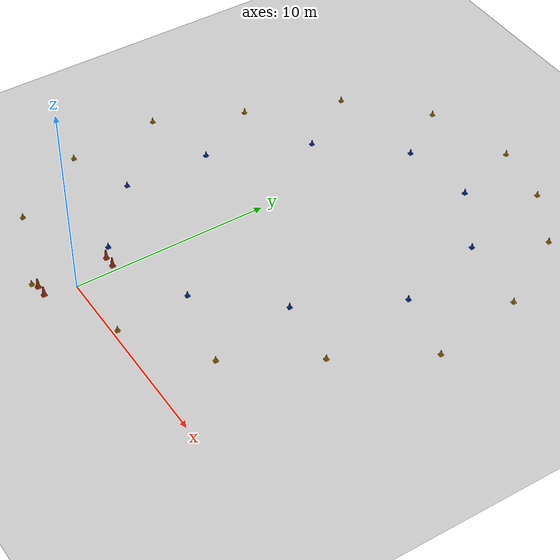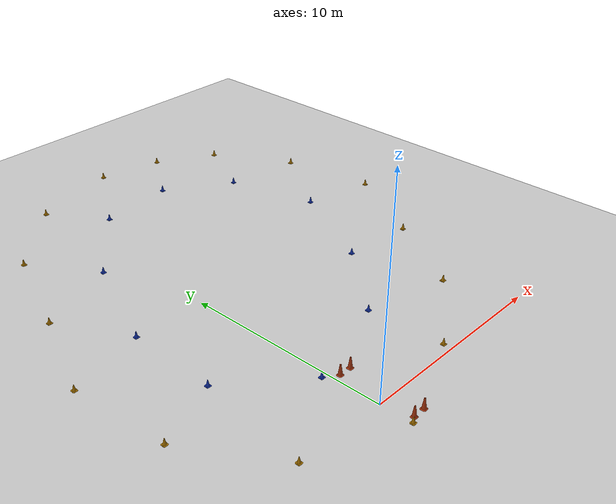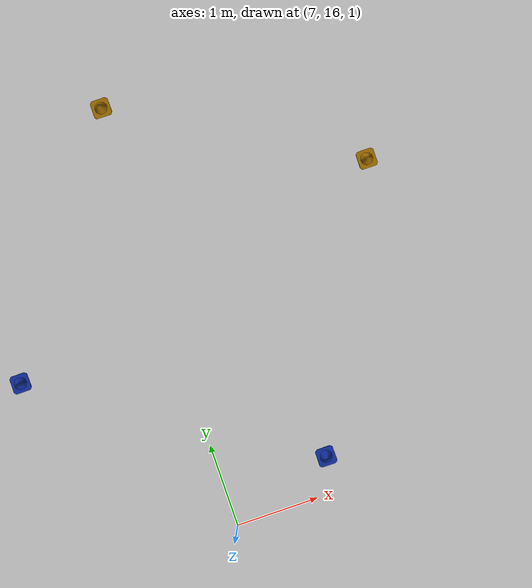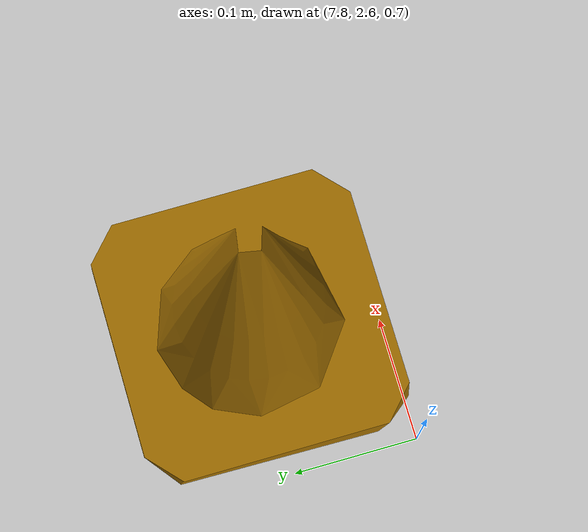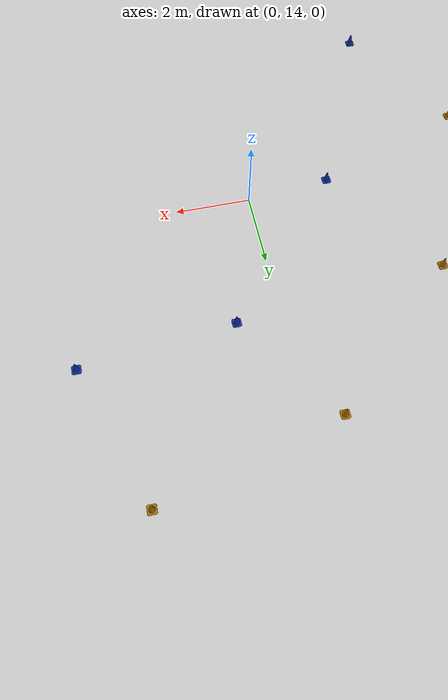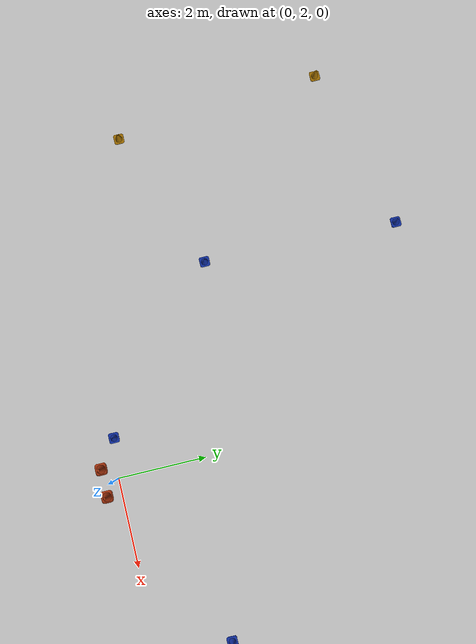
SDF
<?xml version="1.0" ?>
<sdf version="1.6">
  <world name="circle_track">
    <scene>
      <sky>
        <clouds>
          <speed>3</speed>
        </clouds>
      </sky>
      <ambient>1.0 1.0 1.0 1.0</ambient>
      <shadows>1</shadows>
    </scene>

    <include>
      <uri>model://ground_plane</uri>
    </include>

    <include>
      <uri>model://sun</uri>
    </include>

    <include>
      <uri>model://models/circle_track</uri>
      <name>track</name>
      <pose>0 0 0.5 0 0 0</pose>
    </include>

  </world>
</sdf>

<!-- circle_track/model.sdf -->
<sdf version='1.6'>
    <model name='circle_track'>

        <include>
            <pose>-0.894555 2.163771 0.15 0 0 0</pose>
            <uri>model://models/blue_cone</uri>
            <name>blue_cone_1</name>

            <covariance x="0.01" y="0.01" xy="0.0"/>

        </include>

        <include>
            <pose>3.839915 3.666966 0.15 0 0 0</pose>
            <uri>model://models/blue_cone</uri>
            <name>blue_cone_2</name>

            <covariance x="0.01" y="0.01" xy="0.0"/>

        </include>

        <include>
            <pose>-4.221919 4.975996 0.15 0 0 0</pose>
            <uri>model://models/blue_cone</uri>
            <name>blue_cone_3</name>

            <covariance x="0.01" y="0.01" xy="0.0"/>

        </include>

        <include>
            <pose>6.946008 7.144466 0.15 0 0 0</pose>
            <uri>model://models/blue_cone</uri>
            <name>blue_cone_4</name>

            <covariance x="0.01" y="0.01" xy="0.0"/>

        </include>

        <include>
            <pose>-4.110837 9.353603 0.15 0 0 0</pose>
            <uri>model://models/blue_cone</uri>
            <name>blue_cone_5</name>

            <covariance x="0.01" y="0.01" xy="0.0"/>

        </include>

        <include>
            <pose>-2.015173 14.254836 0.15 0 0 0</pose>
            <uri>model://models/blue_cone</uri>
            <name>blue_cone_6</name>

            <covariance x="0.01" y="0.01" xy="0.0"/>

        </include>

        <include>
            <pose>9.414028 11.909330 0.15 0 0 0</pose>
            <uri>model://models/blue_cone</uri>
            <name>blue_cone_7</name>

            <covariance x="0.01" y="0.01" xy="0.0"/>

        </include>

        <include>
            <pose>1.210636 17.976082 0.15 0 0 0</pose>
            <uri>model://models/blue_cone</uri>
            <name>blue_cone_8</name>

            <covariance x="0.01" y="0.01" xy="0.0"/>

        </include>

        <include>
            <pose>8.254705 16.382166 0.15 0 0 0</pose>
            <uri>model://models/blue_cone</uri>
            <name>blue_cone_9</name>

            <covariance x="0.01" y="0.01" xy="0.0"/>

        </include>

        <include>
            <pose>5.042169 18.423351 0.15 0 0 0</pose>
            <uri>model://models/blue_cone</uri>
            <name>blue_cone_10</name>

            <covariance x="0.01" y="0.01" xy="0.0"/>

        </include>

        <include>
            <pose>-0.592210 -1.920924 0.15 0 0 0</pose>
            <uri>model://models/yellow_cone</uri>
            <name>yellow_cone_1</name>

            <covariance x="0.01" y="0.01" xy="0.0"/>

        </include>

        <include>
            <pose>4.046634 -0.018347 0.15 0 0 0</pose>
            <uri>model://models/yellow_cone</uri>
            <name>yellow_cone_2</name>

            <covariance x="0.01" y="0.01" xy="0.0"/>

        </include>

        <include>
            <pose>-4.884020 -0.281182 0.15 0 0 0</pose>
            <uri>model://models/yellow_cone</uri>
            <name>yellow_cone_3</name>

            <covariance x="0.01" y="0.01" xy="0.0"/>

        </include>

        <include>
            <pose>-7.424773 3.737362 0.15 0 0 0</pose>
            <uri>model://models/yellow_cone</uri>
            <name>yellow_cone_4</name>

            <covariance x="0.01" y="0.01" xy="0.0"/>

        </include>

        <include>
            <pose>7.933220 2.699281 0.15 0 0 0</pose>
            <uri>model://models/yellow_cone</uri>
            <name>yellow_cone_5</name>

            <covariance x="0.01" y="0.01" xy="0.0"/>

        </include>

        <include>
            <pose>-7.844864 8.427316 0.15 0 0 0</pose>
            <uri>model://models/yellow_cone</uri>
            <name>yellow_cone_6</name>

            <covariance x="0.01" y="0.01" xy="0.0"/>

        </include>

        <include>
            <pose>10.432043 6.781659 0.15 0 0 0</pose>
            <uri>model://models/yellow_cone</uri>
            <name>yellow_cone_7</name>

            <covariance x="0.01" y="0.01" xy="0.0"/>

        </include>

        <include>
            <pose>-5.968383 12.740019 0.15 0 0 0</pose>
            <uri>model://models/yellow_cone</uri>
            <name>yellow_cone_8</name>

            <covariance x="0.01" y="0.01" xy="0.0"/>

        </include>

        <include>
            <pose>12.898204 11.121443 0.15 0 0 0</pose>
            <uri>model://models/yellow_cone</uri>
            <name>yellow_cone_9</name>

            <covariance x="0.01" y="0.01" xy="0.0"/>

        </include>

        <include>
            <pose>-4.108193 17.426032 0.15 0 0 0</pose>
            <uri>model://models/yellow_cone</uri>
            <name>yellow_cone_10</name>

            <covariance x="0.01" y="0.01" xy="0.0"/>

        </include>

        <include>
            <pose>12.104495 15.774266 0.15 0 0 0</pose>
            <uri>model://models/yellow_cone</uri>
            <name>yellow_cone_11</name>

            <covariance x="0.01" y="0.01" xy="0.0"/>

        </include>

        <include>
            <pose>-0.651944 20.700832 0.15 0 0 0</pose>
            <uri>model://models/yellow_cone</uri>
            <name>yellow_cone_12</name>

            <covariance x="0.01" y="0.01" xy="0.0"/>

        </include>

        <include>
            <pose>9.893354 19.631391 0.15 0 0 0</pose>
            <uri>model://models/yellow_cone</uri>
            <name>yellow_cone_13</name>

            <covariance x="0.01" y="0.01" xy="0.0"/>

        </include>

        <include>
            <pose>3.846559 21.900715 0.15 0 0 0</pose>
            <uri>model://models/yellow_cone</uri>
            <name>yellow_cone_14</name>

            <covariance x="0.01" y="0.01" xy="0.0"/>

        </include>

        <include>
            <pose>7.049094 21.257713 0.15 0 0 0</pose>
            <uri>model://models/yellow_cone</uri>
            <name>yellow_cone_15</name>

            <covariance x="0.01" y="0.01" xy="0.0"/>

        </include>

        <include>
            <pose>0.300000 1.746425 0.15 0 0 0</pose>
            <uri>model://models/big_cone</uri>
            <name>big_cone_1</name>

            <covariance x="0.01" y="0.01" xy="0.0"/>

        </include>

        <include>
            <pose>0.300000 -1.746425 0.15 0 0 0</pose>
            <uri>model://models/big_cone</uri>
            <name>big_cone_2</name>

            <covariance x="0.01" y="0.01" xy="0.0"/>

        </include>

        <include>
            <pose>-0.300000 1.746425 0.15 0 0 0</pose>
            <uri>model://models/big_cone</uri>
            <name>big_cone_3</name>

            <covariance x="0.01" y="0.01" xy="0.0"/>

        </include>

        <include>
            <pose>-0.300000 -1.746425 0.15 0 0 0</pose>
            <uri>model://models/big_cone</uri>
            <name>big_cone_4</name>

            <covariance x="0.01" y="0.01" xy="0.0"/>

        </include>

        <static>0</static>
        <allow_auto_disable>1</allow_auto_disable>
    </model>
</sdf>

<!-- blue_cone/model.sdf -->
<sdf version='1.6'>
  <model name='blue_cone'>
    <link name='link'>
      <pose frame=''>0 0 0 0 0 0</pose>
      <inertial>
        <inertia>
          <ixx>0.0016</ixx>
          <ixy>0</ixy>
          <ixz>0</ixz>
          <iyy>0.0016</iyy>
          <iyz>0</iyz>
          <izz>0.0010</izz>
        </inertia>
        <mass>0.45</mass>
      </inertial>
      <visual name='visual'>
        <geometry>
          <mesh>
            <uri>model://meshes/cone_blue.dae</uri>
          </mesh>
        </geometry>
        <cast_shadows>1</cast_shadows>
      </visual>
      <collision name='collision'>
        <max_contacts>3</max_contacts>
        <geometry>
          <mesh>
            <uri>model://meshes/cone_blue.dae</uri>
          </mesh>
        </geometry>
      </collision>
    </link>
  </model>
</sdf>

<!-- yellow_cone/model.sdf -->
<sdf version='1.6'>
  <model name='yellow_cone'>
    <link name='link'>
      <pose frame=''>0 0 0 0 0 0</pose>
      <inertial>
        <inertia>
          <ixx>0.0016</ixx>
          <ixy>0</ixy>
          <ixz>0</ixz>
          <iyy>0.0016</iyy>
          <iyz>0</iyz>
          <izz>0.0010</izz>
        </inertia>
        <mass>0.45</mass>
      </inertial>
      <visual name='visual'>
        <geometry>
          <mesh>
            <uri>model://meshes/cone_yellow.dae</uri>
          </mesh>
        </geometry>
        <cast_shadows>1</cast_shadows>
      </visual>
      <collision name='collision'>
        <max_contacts>3</max_contacts>
        <geometry>
          <mesh>
            <uri>model://meshes/cone_yellow.dae</uri>
          </mesh>
        </geometry>
      </collision>
    </link>
  </model>
</sdf>

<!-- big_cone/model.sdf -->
<sdf version='1.6'>
  <model name='big_cone'>
    <link name='link'>
      <pose frame=''>0 0 0 0 0 0</pose>
      <inertial>
        <inertia>
          <ixx>0.0016</ixx>
          <ixy>0</ixy>
          <ixz>0</ixz>
          <iyy>0.0016</iyy>
          <iyz>0</iyz>
          <izz>0.0010</izz>
        </inertia>
        <mass>0.45</mass>
      </inertial>
      <visual name='visual'>
        <geometry>
          <mesh>
            <uri>model://meshes/cone_big.dae</uri>
          </mesh>
        </geometry>
        <cast_shadows>1</cast_shadows>
      </visual>
      <collision name='collision'>
        <max_contacts>3</max_contacts>
        <geometry>
          <mesh>
            <uri>model://meshes/cone_big.dae</uri>
          </mesh>
        </geometry>
      </collision>
    </link>
  </model>
</sdf>
